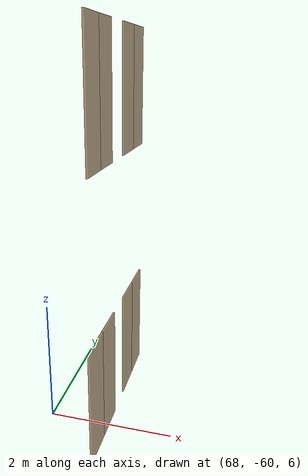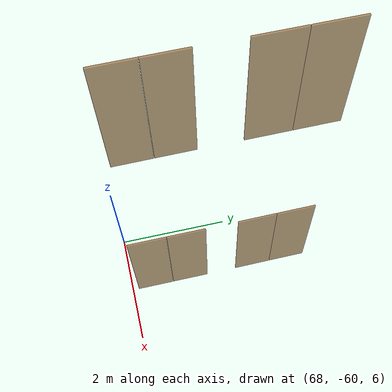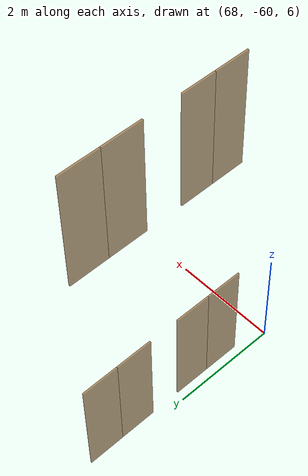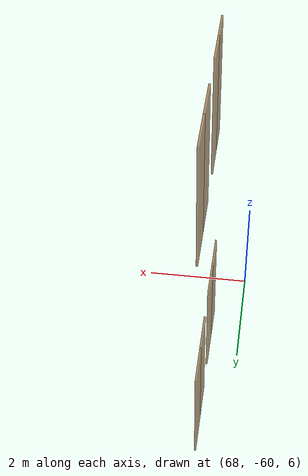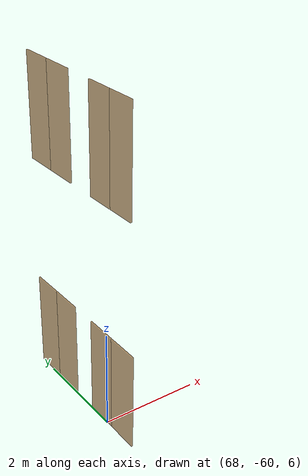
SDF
<sdf version="1.7">
 <world name="sim_world">
  <model name="puerta70">
   <pose>68.63394733591714 -59.19926518180465 5.0 0 0 -1.572298694663171</pose>
   <link name="right">
    <pose>0.3658374235298208 0 1.11 0 0 0</pose>
    <visual name="right_visual">
     <geometry><box><size>0.7216748470596416 0.03 2.2</size></box></geometry>
     <material>
      <ambient>0.5 0.25 0 0.6</ambient>
      <diffuse>0.5 0.25 0 0.6</diffuse>
      <pbr><metal><metalness>0.0</metalness></metal></pbr>
     </material>
    </visual>
    <collision name="right_collision">
     <geometry><box><size>0.7216748470596416 0.03 2.2</size></box></geometry>
     <surface><contact><collide_bitmask>0x02</collide_bitmask></contact></surface>
    </collision>
    <inertial>
     <mass>50.0</mass>
     <inertia><ixx>20.17041666666667</ixx><iyy>22.336727436993993</iyy><izz>2.173810770327321</izz></inertia>
    </inertial>
   </link>
   <joint name="right_joint" type="revolute">
    <parent>world</parent>
    <child>right</child>
    <axis><xyz>0 0 -1</xyz><limit><lower>0</lower><upper>1.57</upper></limit></axis>
    <pose>0.3658374235298208 0 0 0 0 0</pose>
   </joint>
   <link name="left">
    <pose>-0.3658374235298208 0 1.11 0 0 0</pose>
    <visual name="left_visual">
     <geometry><box><size>0.7216748470596416 0.03 2.2</size></box></geometry>
     <material>
      <ambient>0.5 0.25 0 0.6</ambient>
      <diffuse>0.5 0.25 0 0.6</diffuse>
      <pbr><metal><metalness>0.0</metalness></metal></pbr>
     </material>
    </visual>
    <collision name="left_collision">
     <geometry><box><size>0.7216748470596416 0.03 2.2</size></box></geometry>
     <surface><contact><collide_bitmask>0x02</collide_bitmask></contact></surface>
    </collision>
    <inertial>
     <mass>50.0</mass>
     <inertia><ixx>20.17041666666667</ixx><iyy>22.336727436993993</iyy><izz>2.173810770327321</izz></inertia>
    </inertial>
   </link>
   <joint name="left_joint" type="revolute">
    <parent>world</parent>
    <child>left</child>
    <axis><xyz>0 0 -1</xyz><limit><lower>-1.57</lower><upper>0</upper></limit></axis>
    <pose>-0.3658374235298208 0 0 0 0 0</pose>
   </joint>
   <plugin name="register_component" filename="libregister_component.so">
    <component name="Door">
     <v_max_door>0.5</v_max_door>
     <a_max_door>0.3</a_max_door>
     <a_nom_door>0.15</a_nom_door>
     <dx_min_door>0.01</dx_min_door>
     <f_max_door>500.0</f_max_door>
     <ros_interface>true</ros_interface>
     <door name="puerta70" type="DoubleSwingDoor" left_joint_name="left_joint" right_joint_name="right_joint"/>
    </component>
   </plugin>
  </model>
  <model name="puerta71">
   <pose>68.63183095429295 -57.13339031550733 5.0 0 0 -1.566541829194934</pose>
   <link name="right">
    <pose>0.36711791679194916 0 1.11 0 0 0</pose>
    <visual name="right_visual">
     <geometry><box><size>0.7242358335838983 0.03 2.2</size></box></geometry>
     <material>
      <ambient>0.5 0.25 0 0.6</ambient>
      <diffuse>0.5 0.25 0 0.6</diffuse>
      <pbr><metal><metalness>0.0</metalness></metal></pbr>
     </material>
    </visual>
    <collision name="right_collision">
     <geometry><box><size>0.7242358335838983 0.03 2.2</size></box></geometry>
     <surface><contact><collide_bitmask>0x02</collide_bitmask></contact></surface>
    </collision>
    <inertial>
     <mass>50.0</mass>
     <inertia><ixx>20.17041666666667</ixx><iyy>22.35215642769569</iyy><izz>2.189239761029017</izz></inertia>
    </inertial>
   </link>
   <joint name="right_joint" type="revolute">
    <parent>world</parent>
    <child>right</child>
    <axis><xyz>0 0 -1</xyz><limit><lower>0</lower><upper>1.57</upper></limit></axis>
    <pose>0.36711791679194916 0 0 0 0 0</pose>
   </joint>
   <link name="left">
    <pose>-0.36711791679194916 0 1.11 0 0 0</pose>
    <visual name="left_visual">
     <geometry><box><size>0.7242358335838983 0.03 2.2</size></box></geometry>
     <material>
      <ambient>0.5 0.25 0 0.6</ambient>
      <diffuse>0.5 0.25 0 0.6</diffuse>
      <pbr><metal><metalness>0.0</metalness></metal></pbr>
     </material>
    </visual>
    <collision name="left_collision">
     <geometry><box><size>0.7242358335838983 0.03 2.2</size></box></geometry>
     <surface><contact><collide_bitmask>0x02</collide_bitmask></contact></surface>
    </collision>
    <inertial>
     <mass>50.0</mass>
     <inertia><ixx>20.17041666666667</ixx><iyy>22.35215642769569</iyy><izz>2.189239761029017</izz></inertia>
    </inertial>
   </link>
   <joint name="left_joint" type="revolute">
    <parent>world</parent>
    <child>left</child>
    <axis><xyz>0 0 -1</xyz><limit><lower>-1.57</lower><upper>0</upper></limit></axis>
    <pose>-0.36711791679194916 0 0 0 0 0</pose>
   </joint>
   <plugin name="register_component" filename="libregister_component.so">
    <component name="Door">
     <v_max_door>0.5</v_max_door>
     <a_max_door>0.3</a_max_door>
     <a_nom_door>0.15</a_nom_door>
     <dx_min_door>0.01</dx_min_door>
     <f_max_door>500.0</f_max_door>
     <ros_interface>true</ros_interface>
     <door name="puerta71" type="DoubleSwingDoor" left_joint_name="left_joint" right_joint_name="right_joint"/>
    </component>
   </plugin>
  </model>
  <model name="puerta146">
   <pose>68.63721902498143 -59.19005172864317 10.0 0 0 -1.5641336410808044</pose>
   <link name="right">
    <pose>0.3184537156838538 0 1.11 0 0 0</pose>
    <visual name="right_visual">
     <geometry><box><size>0.6269074313677075 0.03 2.2</size></box></geometry>
     <material>
      <ambient>0.5 0.25 0 0.6</ambient>
      <diffuse>0.5 0.25 0 0.6</diffuse>
      <pbr><metal><metalness>0.0</metalness></metal></pbr>
     </material>
    </visual>
    <collision name="right_collision">
     <geometry><box><size>0.6269074313677075 0.03 2.2</size></box></geometry>
     <surface><contact><collide_bitmask>0x02</collide_bitmask></contact></surface>
    </collision>
    <inertial>
     <mass>50.0</mass>
     <inertia><ixx>20.17041666666667</ixx><iyy>21.80422053126691</iyy><izz>1.6413038646002376</izz></inertia>
    </inertial>
   </link>
   <joint name="right_joint" type="revolute">
    <parent>world</parent>
    <child>right</child>
    <axis><xyz>0 0 -1</xyz><limit><lower>0</lower><upper>1.57</upper></limit></axis>
    <pose>0.3184537156838538 0 0 0 0 0</pose>
   </joint>
   <link name="left">
    <pose>-0.3184537156838538 0 1.11 0 0 0</pose>
    <visual name="left_visual">
     <geometry><box><size>0.6269074313677075 0.03 2.2</size></box></geometry>
     <material>
      <ambient>0.5 0.25 0 0.6</ambient>
      <diffuse>0.5 0.25 0 0.6</diffuse>
      <pbr><metal><metalness>0.0</metalness></metal></pbr>
     </material>
    </visual>
    <collision name="left_collision">
     <geometry><box><size>0.6269074313677075 0.03 2.2</size></box></geometry>
     <surface><contact><collide_bitmask>0x02</collide_bitmask></contact></surface>
    </collision>
    <inertial>
     <mass>50.0</mass>
     <inertia><ixx>20.17041666666667</ixx><iyy>21.80422053126691</iyy><izz>1.6413038646002376</izz></inertia>
    </inertial>
   </link>
   <joint name="left_joint" type="revolute">
    <parent>world</parent>
    <child>left</child>
    <axis><xyz>0 0 -1</xyz><limit><lower>-1.57</lower><upper>0</upper></limit></axis>
    <pose>-0.3184537156838538 0 0 0 0 0</pose>
   </joint>
   <plugin name="register_component" filename="libregister_component.so">
    <component name="Door">
     <v_max_door>0.5</v_max_door>
     <a_max_door>0.3</a_max_door>
     <a_nom_door>0.15</a_nom_door>
     <dx_min_door>0.01</dx_min_door>
     <f_max_door>500.0</f_max_door>
     <ros_interface>true</ros_interface>
     <door name="puerta146" type="DoubleSwingDoor" left_joint_name="left_joint" right_joint_name="right_joint"/>
    </component>
   </plugin>
  </model>
  <model name="puerta147">
   <pose>68.63216688659844 -57.13362090760867 10.0 0 0 -1.566540118718049</pose>
   <link name="right">
    <pose>0.3671222075215627 0 1.11 0 0 0</pose>
    <visual name="right_visual">
     <geometry><box><size>0.7242444150431254 0.03 2.2</size></box></geometry>
     <material>
      <ambient>0.5 0.25 0 0.6</ambient>
      <diffuse>0.5 0.25 0 0.6</diffuse>
      <pbr><metal><metalness>0.0</metalness></metal></pbr>
     </material>
    </visual>
    <collision name="right_collision">
     <geometry><box><size>0.7242444150431254 0.03 2.2</size></box></geometry>
     <surface><contact><collide_bitmask>0x02</collide_bitmask></contact></surface>
    </collision>
    <inertial>
     <mass>50.0</mass>
     <inertia><ixx>20.17041666666667</ixx><iyy>22.3522082196715</iyy><izz>2.189291553004829</izz></inertia>
    </inertial>
   </link>
   <joint name="right_joint" type="revolute">
    <parent>world</parent>
    <child>right</child>
    <axis><xyz>0 0 -1</xyz><limit><lower>0</lower><upper>1.57</upper></limit></axis>
    <pose>0.3671222075215627 0 0 0 0 0</pose>
   </joint>
   <link name="left">
    <pose>-0.3671222075215627 0 1.11 0 0 0</pose>
    <visual name="left_visual">
     <geometry><box><size>0.7242444150431254 0.03 2.2</size></box></geometry>
     <material>
      <ambient>0.5 0.25 0 0.6</ambient>
      <diffuse>0.5 0.25 0 0.6</diffuse>
      <pbr><metal><metalness>0.0</metalness></metal></pbr>
     </material>
    </visual>
    <collision name="left_collision">
     <geometry><box><size>0.7242444150431254 0.03 2.2</size></box></geometry>
     <surface><contact><collide_bitmask>0x02</collide_bitmask></contact></surface>
    </collision>
    <inertial>
     <mass>50.0</mass>
     <inertia><ixx>20.17041666666667</ixx><iyy>22.3522082196715</iyy><izz>2.189291553004829</izz></inertia>
    </inertial>
   </link>
   <joint name="left_joint" type="revolute">
    <parent>world</parent>
    <child>left</child>
    <axis><xyz>0 0 -1</xyz><limit><lower>-1.57</lower><upper>0</upper></limit></axis>
    <pose>-0.3671222075215627 0 0 0 0 0</pose>
   </joint>
   <plugin name="register_component" filename="libregister_component.so">
    <component name="Door">
     <v_max_door>0.5</v_max_door>
     <a_max_door>0.3</a_max_door>
     <a_nom_door>0.15</a_nom_door>
     <dx_min_door>0.01</dx_min_door>
     <f_max_door>500.0</f_max_door>
     <ros_interface>true</ros_interface>
     <door name="puerta147" type="DoubleSwingDoor" left_joint_name="left_joint" right_joint_name="right_joint"/>
    </component>
   </plugin>
  </model>
 </world>
</sdf>
